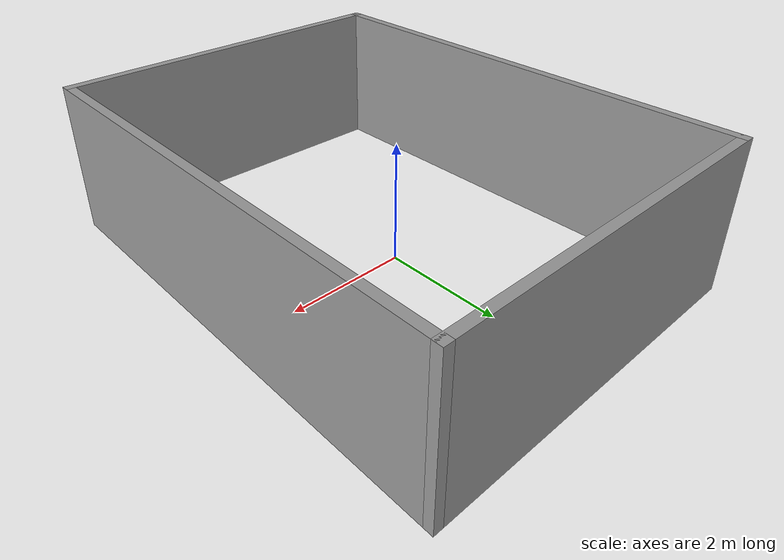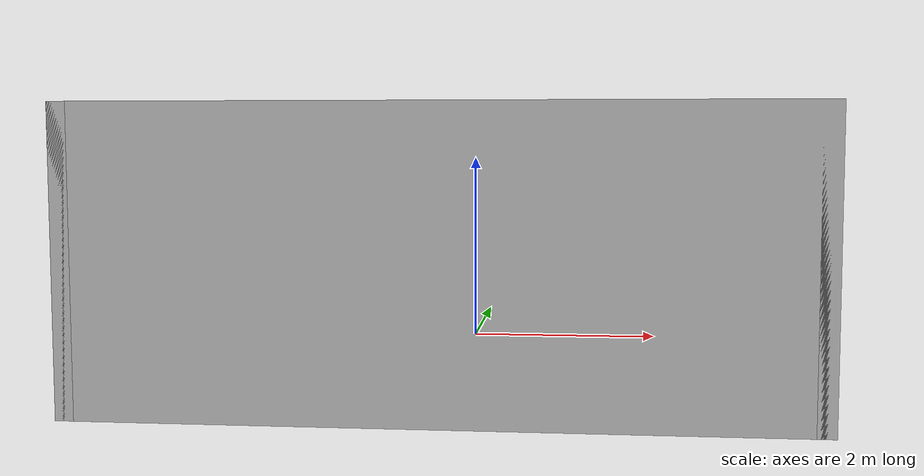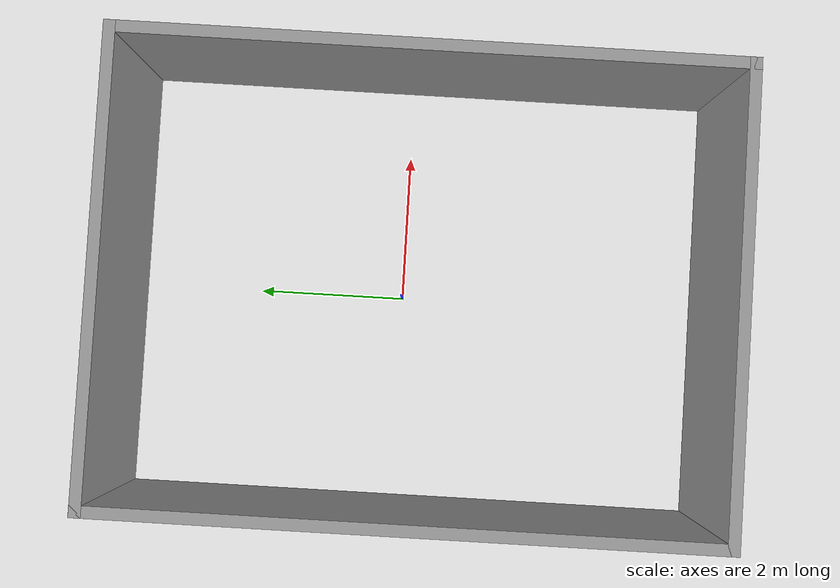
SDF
<?xml version='1.0'?>
<sdf version='1.6'>
  <model name='robot_ur5_wall'>
    <pose frame=''>0.095 -0.215 0 0 -0 0</pose>
    <link name='Wall_2'>
      <collision name='Wall_2_Collision'>
        <geometry>
          <box>
            <size>8 0.15 2.5</size>
          </box>
        </geometry>
        <pose frame=''>0 0 1.25 0 -0 0</pose>
      </collision>
      <visual name='Wall_2_Visual'>
        <pose frame=''>0 0 1.25 0 -0 0</pose>
        <geometry>
          <box>
            <size>8 0.15 2.5</size>
          </box>
        </geometry>
        <material>
          <script>
            <uri>file://media/materials/scripts/gazebo.material</uri>
            <name>Gazebo/Grey</name>
          </script>
          <ambient>1 1 1 1</ambient>
        </material>
        <meta>
          <layer>0</layer>
        </meta>
      </visual>
      <pose frame=''>2.925 0 0 0 -0 1.5708</pose>
    </link>
    <link name='Wall_3'>
      <collision name='Wall_3_Collision'>
        <geometry>
          <box>
            <size>6 0.15 2.5</size>
          </box>
        </geometry>
        <pose frame=''>0 0 1.25 0 -0 0</pose>
      </collision>
      <visual name='Wall_3_Visual'>
        <pose frame=''>0 0 1.25 0 -0 0</pose>
        <geometry>
          <box>
            <size>6 0.15 2.5</size>
          </box>
        </geometry>
        <material>
          <script>
            <uri>file://media/materials/scripts/gazebo.material</uri>
            <name>Gazebo/Grey</name>
          </script>
          <ambient>1 1 1 1</ambient>
        </material>
        <meta>
          <layer>0</layer>
        </meta>
      </visual>
      <pose frame=''>-0 3.925 0 0 -0 3.14159</pose>
    </link>
    <link name='Wall_4'>
      <collision name='Wall_4_Collision'>
        <geometry>
          <box>
            <size>8 0.15 2.5</size>
          </box>
        </geometry>
        <pose frame=''>0 0 1.25 0 -0 0</pose>
      </collision>
      <visual name='Wall_4_Visual'>
        <pose frame=''>0 0 1.25 0 -0 0</pose>
        <geometry>
          <box>
            <size>8 0.15 2.5</size>
          </box>
        </geometry>
        <material>
          <script>
            <uri>file://media/materials/scripts/gazebo.material</uri>
            <name>Gazebo/Grey</name>
          </script>
          <ambient>1 1 1 1</ambient>
        </material>
        <meta>
          <layer>0</layer>
        </meta>
      </visual>
      <pose frame=''>-2.925 0 0 0 -0 -1.5708</pose>
    </link>
    <link name='Wall_6'>
      <collision name='Wall_6_Collision'>
        <geometry>
          <box>
            <size>6 0.15 2.5</size>
          </box>
        </geometry>
        <pose frame=''>0 0 1.25 0 -0 0</pose>
      </collision>
      <visual name='Wall_6_Visual'>
        <pose frame=''>0 0 1.25 0 -0 0</pose>
        <geometry>
          <box>
            <size>6 0.15 2.5</size>
          </box>
        </geometry>
        <material>
          <script>
            <uri>file://media/materials/scripts/gazebo.material</uri>
            <name>Gazebo/Grey</name>
          </script>
          <ambient>1 1 1 1</ambient>
        </material>
        <meta>
          <layer>0</layer>
        </meta>
      </visual>
      <pose frame=''>-0 -3.925 0 0 -0 0</pose>
    </link>
    <static>1</static>
  </model>
</sdf>
